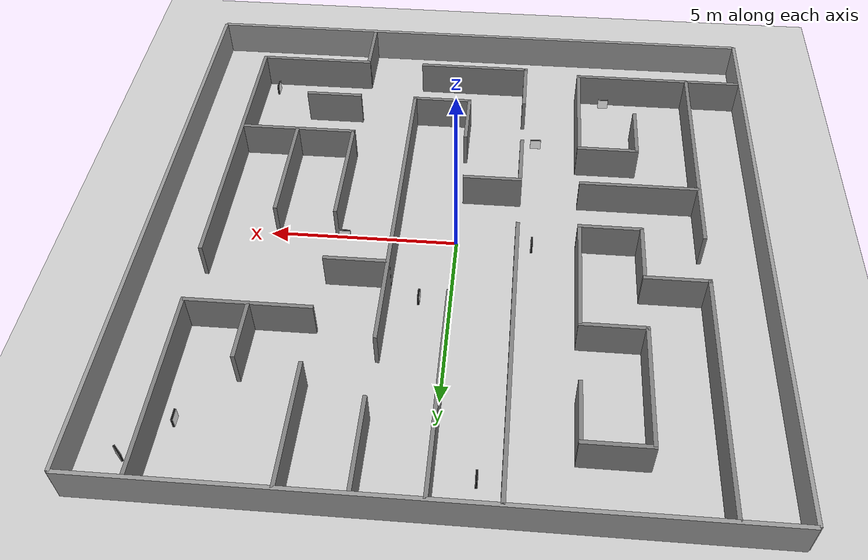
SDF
<?xml version="1.0" ?>
<sdf version="1.8">
  <world name="maze_world">
    <!-- Plugin fondamentali per Gazebo Harmonic -->
    <plugin filename="gz-sim-physics-system" name="gz::sim::systems::Physics"></plugin>
    <plugin filename="gz-sim-user-commands-system" name="gz::sim::systems::UserCommands"></plugin>
    <plugin filename="gz-sim-scene-broadcaster-system" name="gz::sim::systems::SceneBroadcaster"></plugin>
    <plugin filename="gz-sim-sensors-system" name="gz::sim::systems::Sensors">
      <render_engine>ogre2</render_engine>
    </plugin>

    <!-- Luce solare -->
    <light type="directional" name="sun">
      <cast_shadows>true</cast_shadows>
      <pose>0 0 10 0 0 0</pose>
      <diffuse>0.8 0.8 0.8 1</diffuse>
      <specular>0.2 0.2 0.2 1</specular>
      <direction>-0.5 0.1 -0.9</direction>
    </light>

    <!-- Pavimento -->
    <model name="ground_plane">
      <static>true</static>
      <link name="link">
        <collision name="collision">
          <geometry><plane><normal>0 0 1</normal><size>100 100</size></plane></geometry>
        </collision>
        <visual name="visual">
          <geometry><plane><normal>0 0 1</normal><size>100 100</size></plane></geometry>
          <material><ambient>0.8 0.8 0.8 1</ambient><diffuse>0.8 0.8 0.8 1</diffuse></material>
        </visual>
      </link>
    </model>

    <!-- Mura perimetrali -->
     <!-- Mura perimetrali -->
    <model name="boundary_north">
      <static>true</static><pose>8 0 0.5 0 0 0</pose>
      <link name="link">
        <collision name="collision"><geometry><box><size>0.1 16 1</size></box></geometry></collision>
        <visual name="visual">
          <geometry><box><size>0.1 16 1</size></box></geometry>
          <material>
            <ambient>0.6 0.6 0.6 1.0</ambient>
            <diffuse>0.6 0.6 0.6 1.0</diffuse>
            <emissive>0.6 0.6 0.6 1.0</emissive>
          </material>
        </visual>
      </link>
    </model>

    <model name="boundary_south">
      <static>true</static><pose>-8 0 0.5 0 0 0</pose>
      <link name="link">
        <collision name="collision"><geometry><box><size>0.1 16 1</size></box></geometry></collision>
        <visual name="visual">
          <geometry><box><size>0.1 16 1</size></box></geometry>
          <material>
            <ambient>0.6 0.6 0.6 1.0</ambient>
            <diffuse>0.6 0.6 0.6 1.0</diffuse>
            <emissive>0.6 0.6 0.6 1.0</emissive>
          </material>
        </visual>
      </link>
    </model>

    <model name="boundary_east">
      <static>true</static><pose>0 8 0.5 0 0 0</pose>
      <link name="link">
        <collision name="collision"><geometry><box><size>16 0.1 1</size></box></geometry></collision>
        <visual name="visual">
          <geometry><box><size>16 0.1 1</size></box></geometry>
          <material>
            <ambient>0.6 0.6 0.6 1.0</ambient>
            <diffuse>0.6 0.6 0.6 1.0</diffuse>
            <emissive>0.6 0.6 0.6 1.0</emissive>
          </material>
        </visual>
      </link>
    </model>

    <model name="boundary_west">
      <static>true</static><pose>0 -8 0.5 0 0 0</pose>
      <link name="link">
        <collision name="collision"><geometry><box><size>16 0.1 1</size></box></geometry></collision>
        <visual name="visual">
          <geometry><box><size>16 0.1 1</size></box></geometry>
          <material>
            <ambient>0.6 0.6 0.6 1.0</ambient>
            <diffuse>0.6 0.6 0.6 1.0</diffuse>
            <emissive>0.6 0.6 0.6 1.0</emissive>
          </material>
        </visual>
      </link>
    </model>

    <model name="muro_interno_1">

      <static>true</static><pose>-6.4 4.8 0.5 0 0 0</pose>

      <link name="link"><collision name="collision"><geometry><box><size>0.1 6.4 1</size></box></geometry></collision><visual name="visual"><geometry><box><size>0.1 6.4 1</size></box></geometry><material><ambient>0.5 0.5 0.5 1</ambient><diffuse>0.5 0.5 0.5 1</diffuse></material></visual></link>

    </model>

    <model name="muro_interno_2">

      <static>true</static><pose>-6.4 -3 0.5 0 0 0</pose>

      <link name="link"><collision name="collision"><geometry><box><size>0.1 6.4 1</size></box></geometry></collision><visual name="visual"><geometry><box><size>0.1 6.4 1</size></box></geometry><material><ambient>0.5 0.5 0.5 1</ambient><diffuse>0.5 0.5 0.5 1</diffuse></material></visual></link>

    </model>

    <model name="muro_interno_3">

      <static>true</static><pose>-4.8 4.8 0.5 0 0 0</pose>

      <link name="link"><collision name="collision"><geometry><box><size>0.1 3.2 1</size></box></geometry></collision><visual name="visual"><geometry><box><size>0.1 3.2 1</size></box></geometry><material><ambient>0.5 0.5 0.5 1</ambient><diffuse>0.5 0.5 0.5 1</diffuse></material></visual></link>

    </model>

    <model name="muro_interno_4">

      <static>true</static><pose>-4.8 0.8 0.5 0 0 0</pose>

      <link name="link"><collision name="collision"><geometry><box><size>0.1 1.6 1</size></box></geometry></collision><visual name="visual"><geometry><box><size>0.1 1.6 1</size></box></geometry><material><ambient>0.5 0.5 0.5 1</ambient><diffuse>0.5 0.5 0.5 1</diffuse></material></visual></link>

    </model>

    <model name="muro_interno_5">

      <static>true</static><pose>-5.6 1.62 0.5 0 0 0</pose>

      <link name="link"><collision name="collision"><geometry><box><size>1.7 0.1 1</size></box></geometry></collision><visual name="visual"><geometry><box><size>1.7 0.1 1</size></box></geometry><material><ambient>0.5 0.5 0.5 1</ambient><diffuse>0.5 0.5 0.5 1</diffuse></material></visual></link>

    </model>

    <model name="muro_interno_6">

      <static>true</static><pose>-5.6 -6.2 0.5 0 0 0</pose>

      <link name="link"><collision name="collision"><geometry><box><size>4.8 0.1 1</size></box></geometry></collision><visual name="visual"><geometry><box><size>4.8 0.1 1</size></box></geometry><material><ambient>0.5 0.5 0.5 1</ambient><diffuse>0.5 0.5 0.5 1</diffuse></material></visual></link>

    </model>

    <model name="muro_interno_7">

      <static>true</static><pose>-4.8 -1.6 0.5 0 0 0</pose>

      <link name="link"><collision name="collision"><geometry><box><size>3.2 0.1 1</size></box></geometry></collision><visual name="visual"><geometry><box><size>3.2 0.1 1</size></box></geometry><material><ambient>0.5 0.5 0.5 1</ambient><diffuse>0.5 0.5 0.5 1</diffuse></material></visual></link>

    </model>

    <model name="muro_interno_8">

      <static>true</static><pose>-3.2 -4.65 0.5 0 0 0</pose>

      <link name="link"><collision name="collision"><geometry><box><size>0.1 3.2 1</size></box></geometry></collision><visual name="visual"><geometry><box><size>0.1 3.2 1</size></box></geometry><material><ambient>0.5 0.5 0.5 1</ambient><diffuse>0.5 0.5 0.5 1</diffuse></material></visual></link>

    </model>

    <model name="muro_interno_9">

      <static>true</static><pose>-4 3.2 0.5 0 0 0</pose>

      <link name="link"><collision name="collision"><geometry><box><size>1.7 0.1 1</size></box></geometry></collision><visual name="visual"><geometry><box><size>1.7 0.1 1</size></box></geometry><material><ambient>0.5 0.5 0.5 1</ambient><diffuse>0.5 0.5 0.5 1</diffuse></material></visual></link>

    </model>

    <model name="muro_interno_10">

      <static>true</static><pose>-4 -3 0.5 0 0 0</pose>

      <link name="link"><collision name="collision"><geometry><box><size>1.7 0.1 1</size></box></geometry></collision><visual name="visual"><geometry><box><size>1.7 0.1 1</size></box></geometry><material><ambient>0.5 0.5 0.5 1</ambient><diffuse>0.5 0.5 0.5 1</diffuse></material></visual></link>

    </model>

    <model name="muro_interno_11">

      <static>true</static><pose>-4.8 -3.8 0.5 0 0 0</pose>

      <link name="link"><collision name="collision"><geometry><box><size>0.1 1.6 1</size></box></geometry></collision><visual name="visual"><geometry><box><size>0.1 1.6 1</size></box></geometry><material><ambient>0.5 0.5 0.5 1</ambient><diffuse>0.5 0.5 0.5 1</diffuse></material></visual></link>

    </model>

    <model name="muro_interno_12">

      <static>true</static><pose>-4 0 0.5 0 0 0</pose>

      <link name="link"><collision name="collision"><geometry><box><size>1.7 0.1 1</size></box></geometry></collision><visual name="visual"><geometry><box><size>1.7 0.1 1</size></box></geometry><material><ambient>0.5 0.5 0.5 1</ambient><diffuse>0.5 0.5 0.5 1</diffuse></material></visual></link>

    </model>

    <model name="muro_interno_13">

      <static>true</static><pose>-4 6.4 0.5 0 0 0</pose>

      <link name="link"><collision name="collision"><geometry><box><size>1.7 0.1 1</size></box></geometry></collision><visual name="visual"><geometry><box><size>1.7 0.1 1</size></box></geometry><material><ambient>0.5 0.5 0.5 1</ambient><diffuse>0.5 0.5 0.5 1</diffuse></material></visual></link>

    </model>

    <model name="muro_interno_14">

      <static>true</static><pose>-3.2 1.6 0.5 0 0 0</pose>

      <link name="link"><collision name="collision"><geometry><box><size>0.1 3.2 1</size></box></geometry></collision><visual name="visual"><geometry><box><size>0.1 3.2 1</size></box></geometry><material><ambient>0.5 0.5 0.5 1</ambient><diffuse>0.5 0.5 0.5 1</diffuse></material></visual></link>

    </model>

    <model name="muro_interno_15">

      <static>true</static><pose>-3.2 5.6 0.5 0 0 0</pose>

      <link name="link"><collision name="collision"><geometry><box><size>0.1 1.6 1</size></box></geometry></collision><visual name="visual"><geometry><box><size>0.1 1.6 1</size></box></geometry><material><ambient>0.5 0.5 0.5 1</ambient><diffuse>0.5 0.5 0.5 1</diffuse></material></visual></link>

    </model>

    <model name="muro_interno_16">

      <static>true</static><pose>-1.6 4 0.5 0 0 0</pose>

      <link name="link"><collision name="collision"><geometry><box><size>0.1 8 1</size></box></geometry></collision><visual name="visual"><geometry><box><size>0.1 8 1</size></box></geometry><material><ambient>0.5 0.5 0.5 1</ambient><diffuse>0.5 0.5 0.5 1</diffuse></material></visual></link>

    </model>

    <model name="muro_interno_17">

      <static>true</static><pose>-1.6 -2.4 0.5 0 0 0</pose>

      <link name="link"><collision name="collision"><geometry><box><size>0.1 1.6 1</size></box></geometry></collision><visual name="visual"><geometry><box><size>0.1 1.6 1</size></box></geometry><material><ambient>0.5 0.5 0.5 1</ambient><diffuse>0.5 0.5 0.5 1</diffuse></material></visual></link>

    </model>

    <model name="muro_interno_18">

      <static>true</static><pose>-1.6 -5.6 0.5 0 0 0</pose>

      <link name="link"><collision name="collision"><geometry><box><size>0.1 1.6 1</size></box></geometry></collision><visual name="visual"><geometry><box><size>0.1 1.6 1</size></box></geometry><material><ambient>0.5 0.5 0.5 1</ambient><diffuse>0.5 0.5 0.5 1</diffuse></material></visual></link>

    </model>

    <model name="muro_interno_19">

      <static>true</static><pose>-0.85 -1.6 0.5 0 0 0</pose>

      <link name="link"><collision name="collision"><geometry><box><size>1.6 0.1 1</size></box></geometry></collision><visual name="visual"><geometry><box><size>1.6 0.1 1</size></box></geometry><material><ambient>0.5 0.5 0.5 1</ambient><diffuse>0.5 0.5 0.5 1</diffuse></material></visual></link>

    </model>

    <model name="muro_interno_20">

      <static>true</static><pose>-0.05 -6.4 0.5 0 0 0</pose>

      <link name="link"><collision name="collision"><geometry><box><size>3.2 0.1 1</size></box></geometry></collision><visual name="visual"><geometry><box><size>3.2 0.1 1</size></box></geometry><material><ambient>0.5 0.5 0.5 1</ambient><diffuse>0.5 0.5 0.5 1</diffuse></material></visual></link>

    </model>

    <model name="muro_interno_21">

      <static>true</static><pose>0 5.2 0.5 0 0 0</pose>

      <link name="link"><collision name="collision"><geometry><box><size>0.1 5.6 1</size></box></geometry></collision><visual name="visual"><geometry><box><size>0.1 5.6 1</size></box></geometry><material><ambient>0.5 0.5 0.5 1</ambient><diffuse>0.5 0.5 0.5 1</diffuse></material></visual></link>

    </model>

    <model name="muro_interno_22">

      <static>true</static><pose>0 -4 0.5 0 0 0</pose>

      <link name="link"><collision name="collision"><geometry><box><size>0.1 1.6 1</size></box></geometry></collision><visual name="visual"><geometry><box><size>0.1 1.6 1</size></box></geometry><material><ambient>0.5 0.5 0.5 1</ambient><diffuse>0.5 0.5 0.5 1</diffuse></material></visual></link>

    </model>

    <model name="muro_interno_23">

      <static>true</static><pose>0.8 -4.8 0.5 0 0 0</pose>

      <link name="link"><collision name="collision"><geometry><box><size>1.7 0.1 1</size></box></geometry></collision><visual name="visual"><geometry><box><size>1.7 0.1 1</size></box></geometry><material><ambient>0.5 0.5 0.5 1</ambient><diffuse>0.5 0.5 0.5 1</diffuse></material></visual></link>

    </model>

    <model name="muro_interno_24">

      <static>true</static><pose>1.6 6.8 0.5 0 0 0</pose>

      <link name="link"><collision name="collision"><geometry><box><size>0.1 2.4 1</size></box></geometry></collision><visual name="visual"><geometry><box><size>0.1 2.4 1</size></box></geometry><material><ambient>0.5 0.5 0.5 1</ambient><diffuse>0.5 0.5 0.5 1</diffuse></material></visual></link>

    </model>

    <model name="muro_interno_25">

      <static>true</static><pose>1.6 -0.4 0.5 0 0 0</pose>

      <link name="link"><collision name="collision"><geometry><box><size>0.1 8.8 1</size></box></geometry></collision><visual name="visual"><geometry><box><size>0.1 8.8 1</size></box></geometry><material><ambient>0.5 0.5 0.5 1</ambient><diffuse>0.5 0.5 0.5 1</diffuse></material></visual></link>

    </model>

    <model name="muro_interno_26">

      <static>true</static><pose>2.4 1.6 0.5 0 0 0</pose>

      <link name="link"><collision name="collision"><geometry><box><size>1.7 0.1 1</size></box></geometry></collision><visual name="visual"><geometry><box><size>1.7 0.1 1</size></box></geometry><material><ambient>0.5 0.5 0.5 1</ambient><diffuse>0.5 0.5 0.5 1</diffuse></material></visual></link>

    </model>

    <model name="muro_interno_27">

      <static>true</static><pose>3.2 6.4 0.5 0 0 0</pose>

      <link name="link"><collision name="collision"><geometry><box><size>0.1 3.2 1</size></box></geometry></collision><visual name="visual"><geometry><box><size>0.1 3.2 1</size></box></geometry><material><ambient>0.5 0.5 0.5 1</ambient><diffuse>0.5 0.5 0.5 1</diffuse></material></visual></link>

    </model>

    <model name="muro_interno_28">

      <static>true</static><pose>3.2 -1.6 0.5 0 0 0</pose>

      <link name="link"><collision name="collision"><geometry><box><size>0.1 3.2 1</size></box></geometry></collision><visual name="visual"><geometry><box><size>0.1 3.2 1</size></box></geometry><material><ambient>0.5 0.5 0.5 1</ambient><diffuse>0.5 0.5 0.5 1</diffuse></material></visual></link>

    </model>

    <model name="muro_interno_29">

      <static>true</static><pose>3.2 -7.2 0.5 0 0 0</pose>

      <link name="link"><collision name="collision"><geometry><box><size>0.1 1.6 1</size></box></geometry></collision><visual name="visual"><geometry><box><size>0.1 1.6 1</size></box></geometry><material><ambient>0.5 0.5 0.5 1</ambient><diffuse>0.5 0.5 0.5 1</diffuse></material></visual></link>

    </model>

    <model name="muro_interno_30">

      <static>true</static><pose>4.8 3.2 0.5 0 0 0</pose>

      <link name="link"><collision name="collision"><geometry><box><size>3.2 0.1 1</size></box></geometry></collision><visual name="visual"><geometry><box><size>3.2 0.1 1</size></box></geometry><material><ambient>0.5 0.5 0.5 1</ambient><diffuse>0.5 0.5 0.5 1</diffuse></material></visual></link>

    </model>

    <model name="muro_interno_31">

      <static>true</static><pose>4.75 -3.2 0.5 0 0 0</pose>

      <link name="link"><collision name="collision"><geometry><box><size>3.2 0.1 1</size></box></geometry></collision><visual name="visual"><geometry><box><size>3.2 0.1 1</size></box></geometry><material><ambient>0.5 0.5 0.5 1</ambient><diffuse>0.5 0.5 0.5 1</diffuse></material></visual></link>

    </model>

    <model name="muro_interno_32">

      <static>true</static><pose>4 -4.8 0.5 0 0 0</pose>

      <link name="link"><collision name="collision"><geometry><box><size>1.6 0.1 1</size></box></geometry></collision><visual name="visual"><geometry><box><size>1.6 0.1 1</size></box></geometry><material><ambient>0.5 0.5 0.5 1</ambient><diffuse>0.5 0.5 0.5 1</diffuse></material></visual></link>

    </model>

    <model name="muro_interno_33">

      <static>true</static><pose>4.75 -6.4 0.5 0 0 0</pose>

      <link name="link"><collision name="collision"><geometry><box><size>3.2 0.1 1</size></box></geometry></collision><visual name="visual"><geometry><box><size>3.2 0.1 1</size></box></geometry><material><ambient>0.5 0.5 0.5 1</ambient><diffuse>0.5 0.5 0.5 1</diffuse></material></visual></link>

    </model>

    <model name="muro_interno_34">

      <static>true</static><pose>4.8 4 0.5 0 0 0</pose>

      <link name="link"><collision name="collision"><geometry><box><size>0.1 1.6 1</size></box></geometry></collision><visual name="visual"><geometry><box><size>0.1 1.6 1</size></box></geometry><material><ambient>0.5 0.5 0.5 1</ambient><diffuse>0.5 0.5 0.5 1</diffuse></material></visual></link>

    </model>

    <model name="muro_interno_36">

      <static>true</static><pose>4.8 -1.6 0.5 0 0 0</pose>

      <link name="link"><collision name="collision"><geometry><box><size>0.1 3.2 1</size></box></geometry></collision><visual name="visual"><geometry><box><size>0.1 3.2 1</size></box></geometry><material><ambient>0.5 0.5 0.5 1</ambient><diffuse>0.5 0.5 0.5 1</diffuse></material></visual></link>

    </model>

    <model name="muro_interno_37">

      <static>true</static><pose>6.4 5.55 0.5 0 0 0</pose>

      <link name="link"><collision name="collision"><geometry><box><size>0.1 4.8 1</size></box></geometry></collision><visual name="visual"><geometry><box><size>0.1 4.8 1</size></box></geometry><material><ambient>0.5 0.5 0.5 1</ambient><diffuse>0.5 0.5 0.5 1</diffuse></material></visual></link>

    </model>

    <model name="muro_interno_38">

      <static>true</static><pose>6.4 -2.45 0.5 0 0 0</pose>

      <link name="link"><collision name="collision"><geometry><box><size>0.1 8 1</size></box></geometry></collision><visual name="visual"><geometry><box><size>0.1 8 1</size></box></geometry><material><ambient>0.5 0.5 0.5 1</ambient><diffuse>0.5 0.5 0.5 1</diffuse></material></visual></link>

    </model>

       <!-- Chiave 1 (ArUco ID 1) - Marker solo su 2 facce -->
    <model name="key_1">
      <static>true</static>
      <pose>-2.0 -4.0 0.15 0 0 1.57</pose>
      <link name="link">

        <!-- Collisione fisica del cubo per Nav2 -->
        <collision name="collision">
          <geometry><box><size>0.05 0.3 0.3</size></box></geometry>
        </collision>

        <!-- 1. IL CUBO BASE (Completamente Nero) -->
        <visual name="cubo_base">
          <geometry><box><size>0.05 0.3 0.3</size></box></geometry>
          <material>
            <ambient>0.05 0.05 0.05 1.0</ambient>
            <diffuse>0.05 0.05 0.05 1.0</diffuse>
          </material>
        </visual>

        <!-- 2. FACCIA FRONTALE (con Marker) -->
        <visual name="marker_frontale1">
          <pose>0.026 0 0 0 0 0</pose>
          <!-- Spessore di 1 millimetro, larga e alta 30 cm -->
          <geometry><box><size>0.001 0.3 0.3</size></box></geometry>
          <material>
            <ambient>1.0 1.0 1.0 1.0</ambient>
            <diffuse>1.0 1.0 1.0 1.0</diffuse>
            <emissive>1.0 1.0 1.0 1.0</emissive>
            <pbr>
              <metal>
                <albedo_map>package://turtlebot_maze/models/aruco_textures/marker_1.png</albedo_map>
                <emissive_map>package://turtlebot_maze/models/aruco_textures/marker_1.png</emissive_map>
              </metal>
            </pbr>
          </material>
        </visual>

        <!-- 3. FACCIA POSTERIORE (Con Marker ) -->
        <visual name="marker_posteriore1">
          <pose>-0.026 0 0 0 0 0</pose>
          <geometry><box><size>0.001 0.3 0.3</size></box></geometry>
          <material>
            <ambient>1.0 1.0 1.0 1.0</ambient>
            <diffuse>1.0 1.0 1.0 1.0</diffuse>
            <emissive>1.0 1.0 1.0 1.0</emissive>
            <pbr>
              <metal>
                <albedo_map>package://turtlebot_maze/models/aruco_textures/marker_1.png</albedo_map>
                <emissive_map>package://turtlebot_maze/models/aruco_textures/marker_1.png</emissive_map>
              </metal>
            </pbr>
          </material>
        </visual>
      </link>
    </model>

       <!-- Chiave 2 (ArUco ID 2) - Marker solo su 2 facce -->
    <model name="key_2">
      <static>true</static>
      <pose>0.8 2.0 0.15 0 0 0</pose>
      <link name="link">

        <!-- Collisione fisica del cubo per Nav2 -->
        <collision name="collision">
          <geometry><box><size>0.05 0.3 0.3</size></box></geometry>
        </collision>

        <!-- 1. IL CUBO BASE (completamente Nero) -->
        <visual name="cubo_base">
          <geometry><box><size>0.05 0.3 0.3</size></box></geometry>
          <material>
            <ambient>0.05 0.05 0.05 1.0</ambient>
            <diffuse>0.05 0.05 0.05 1.0</diffuse>
          </material>
        </visual>

        <!-- 2. FACCIA FRONTALE (Con Marker) -->
        <visual name="marker_frontale2">
          <pose>0.026 0 0 0 0 0</pose>
          <!-- Spessore di 1 millimetro, larga e alta 30 cm -->
          <geometry><box><size>0.001 0.3 0.3</size></box></geometry>
          <material>
            <ambient>1.0 1.0 1.0 1.0</ambient>
            <diffuse>1.0 1.0 1.0 1.0</diffuse>
            <emissive>1.0 1.0 1.0 1.0</emissive>
            <pbr>
              <metal>
                <albedo_map>package://turtlebot_maze/models/aruco_textures/marker_2.png</albedo_map>
                <emissive_map>package://turtlebot_maze/models/aruco_textures/marker_2.png</emissive_map>
              </metal>
            </pbr>
          </material>
        </visual>

        <!-- 3. FACCIA POSTERIORE (Con Marker) -->
        <visual name="marker_posteriore2">
          <pose>-0.026 0 0 0 0 0</pose>
          <geometry><box><size>0.001 0.3 0.3</size></box></geometry>
          <material>
            <ambient>1.0 1.0 1.0 1.0</ambient>
            <diffuse>1.0 1.0 1.0 1.0</diffuse>
            <emissive>1.0 1.0 1.0 1.0</emissive>
            <pbr>
              <metal>
                <albedo_map>package://turtlebot_maze/models/aruco_textures/marker_2.png</albedo_map>
                <emissive_map>package://turtlebot_maze/models/aruco_textures/marker_2.png</emissive_map>
              </metal>
            </pbr>
          </material>
        </visual>
      </link>
    </model>

       <!-- Chiave 3 (ArUco ID 3) - Marker solo su 2 facce -->
    <model name="key_3">
      <static>true</static>
      <pose>-2.0 0 0.15 0 0 0</pose>
      <link name="link">

        <!-- Collisione fisica del cubo per Nav2 -->
        <collision name="collision">
          <geometry><box><size>0.05 0.3 0.3</size></box></geometry>
        </collision>

        <!-- 1. IL CUBO BASE (completamente Nero) -->
        <visual name="cubo_base">
          <geometry><box><size>0.05 0.3 0.3</size></box></geometry>
          <material>
            <ambient>0.05 0.05 0.05 1.0</ambient>
            <diffuse>0.05 0.05 0.05 1.0</diffuse>
          </material>
        </visual>

        <!-- 2. FACCIA FRONTALE (Con Marker) -->
        <visual name="marker_frontale3">
          <pose>0.026 0 0 0 0 0</pose>
          <!-- Spessore di 1 millimetro, larga e alta 30 cm -->
          <geometry><box><size>0.001 0.3 0.3</size></box></geometry>
          <material>
            <ambient>1.0 1.0 1.0 1.0</ambient>
            <diffuse>1.0 1.0 1.0 1.0</diffuse>
            <emissive>1.0 1.0 1.0 1.0</emissive>
            <pbr>
              <metal>
                <albedo_map>package://turtlebot_maze/models/aruco_textures/marker_3.png</albedo_map>
                <emissive_map>package://turtlebot_maze/models/aruco_textures/marker_3.png</emissive_map>
              </metal>
            </pbr>
          </material>
        </visual>

        <!-- 3. FACCIA POSTERIORE (Con Marker ) -->
        <visual name="marker_posteriore3">
          <pose>-0.026 0 0 0 0 0</pose>
          <geometry><box><size>0.001 0.3 0.3</size></box></geometry>
          <material>
            <ambient>1.0 1.0 1.0 1.0</ambient>
            <diffuse>1.0 1.0 1.0 1.0</diffuse>
            <emissive>1.0 1.0 1.0 1.0</emissive>
            <pbr>
              <metal>
                <albedo_map>package://turtlebot_maze/models/aruco_textures/marker_3.png</albedo_map>
                <emissive_map>package://turtlebot_maze/models/aruco_textures/marker_3.png</emissive_map>
              </metal>
            </pbr>
          </material>
        </visual>
      </link>
    </model>

       <!-- Chiave 4 (ArUco ID 2) - Marker solo su 2 facce -->
    <model name="key_4">
      <static>true</static>
      <pose>-4.0 -6.0 0.15 0 0 1.57</pose>
      <link name="link">

        <!-- Collisione fisica del cubo per Nav2 -->
        <collision name="collision">
          <geometry><box><size>0.05 0.3 0.3</size></box></geometry>
        </collision>

        <!-- 1. IL CUBO BASE (completamente Nero) -->
        <visual name="cubo_base">
          <geometry><box><size>0.05 0.3 0.3</size></box></geometry>
          <material>
            <ambient>0.05 0.05 0.05 1.0</ambient>
            <diffuse>0.05 0.05 0.05 1.0</diffuse>
          </material>
        </visual>

        <!-- 2. FACCIA FRONTALE (Con Marker ) -->
        <visual name="marker_frontale4">
          <pose>0.026 0 0 0 0 0</pose>
          <!-- Spessore di 1 millimetro, larga e alta 30 cm -->
          <geometry><box><size>0.001 0.3 0.3</size></box></geometry>
          <material>
            <ambient>1.0 1.0 1.0 1.0</ambient>
            <diffuse>1.0 1.0 1.0 1.0</diffuse>
            <emissive>1.0 1.0 1.0 1.0</emissive>
            <pbr>
              <metal>
                <albedo_map>package://turtlebot_maze/models/aruco_textures/marker_4.png</albedo_map>
                <emissive_map>package://turtlebot_maze/models/aruco_textures/marker_4.png</emissive_map>
              </metal>
            </pbr>
          </material>
        </visual>

        <!-- 3. FACCIA POSTERIORE (Con Marker) -->
        <visual name="marker_posteriore4">
          <pose>-0.026 0 0 0 0 0</pose>
          <geometry><box><size>0.001 0.3 0.3</size></box></geometry>
          <material>
            <ambient>1.0 1.0 1.0 1.0</ambient>
            <diffuse>1.0 1.0 1.0 1.0</diffuse>
            <emissive>1.0 1.0 1.0 1.0</emissive>
            <pbr>
              <metal>
                <albedo_map>package://turtlebot_maze/models/aruco_textures/marker_4.png</albedo_map>
                <emissive_map>package://turtlebot_maze/models/aruco_textures/marker_4.png</emissive_map>
              </metal>
            </pbr>
          </material>
        </visual>
      </link>
    </model>

       <!-- Chiave 5 (ArUco ID 2) - Marker solo su 2 facce -->
    <model name="key_5">
      <static>true</static>
      <pose>6.0 -6.0 0.15 0 0 0</pose>
      <link name="link">

        <!-- Collisione fisica del cubo per Nav2 -->
        <collision name="collision">
          <geometry><box><size>0.05 0.3 0.3</size></box></geometry>
        </collision>

        <!-- 1. IL CUBO BASE (completamente Nero) -->
        <visual name="cubo_base">
          <geometry><box><size>0.05 0.3 0.3</size></box></geometry>
          <material>
            <ambient>0.05 0.05 0.05 1.0</ambient>
            <diffuse>0.05 0.05 0.05 1.0</diffuse>
          </material>
        </visual>

        <!-- 2. FACCIA FRONTALE (Con Marker) -->
        <visual name="marker_frontale5">
          <pose>0.026 0 0 0 0 0</pose>
          <!-- Spessore di 1 millimetro, larga e alta 30 cm -->
          <geometry><box><size>0.001 0.3 0.3</size></box></geometry>
          <material>
            <ambient>1.0 1.0 1.0 1.0</ambient>
            <diffuse>1.0 1.0 1.0 1.0</diffuse>
            <emissive>1.0 1.0 1.0 1.0</emissive>
            <pbr>
              <metal>
                <albedo_map>package://turtlebot_maze/models/aruco_textures/marker_5.png</albedo_map>
                <emissive_map>package://turtlebot_maze/models/aruco_textures/marker_5.png</emissive_map>
              </metal>
            </pbr>
          </material>
        </visual>

        <!-- 3. FACCIA POSTERIORE (Con Marker) -->
        <visual name="marker_posteriore5">
          <pose>-0.026 0 0 0 0 0</pose>
          <geometry><box><size>0.001 0.3 0.3</size></box></geometry>
          <material>
            <ambient>1.0 1.0 1.0 1.0</ambient>
            <diffuse>1.0 1.0 1.0 1.0</diffuse>
            <emissive>1.0 1.0 1.0 1.0</emissive>
            <pbr>
              <metal>
                <albedo_map>package://turtlebot_maze/models/aruco_textures/marker_5.png</albedo_map>
                <emissive_map>package://turtlebot_maze/models/aruco_textures/marker_5.png</emissive_map>
              </metal>
            </pbr>
          </material>
        </visual>
      </link>
    </model>

       <!-- Chiave 6 (ArUco ID 2) - Marker solo su 2 facce -->
    <model name="key_6">
      <static>true</static>
      <pose>6.0 6.0 0.15 0 0 0</pose>
      <link name="link">

        <!-- Collisione fisica del cubo per Nav2 -->
        <collision name="collision">
          <geometry><box><size>0.05 0.3 0.3</size></box></geometry>
        </collision>

        <!-- 1. IL CUBO BASE (completamente Nero) -->
        <visual name="cubo_base">
          <geometry><box><size>0.05 0.3 0.3</size></box></geometry>
          <material>
            <ambient>0.05 0.05 0.05 1.0</ambient>
            <diffuse>0.05 0.05 0.05 1.0</diffuse>
          </material>
        </visual>

        <!-- 2. FACCIA FRONTALE (Con Marker) -->
        <visual name="marker_frontale6">
          <pose>0.026 0 0 0 0 0</pose>
          <!-- Spessore di 1 millimetro, larga e alta 30 cm -->
          <geometry><box><size>0.001 0.3 0.3</size></box></geometry>
          <material>
            <ambient>1.0 1.0 1.0 1.0</ambient>
            <diffuse>1.0 1.0 1.0 1.0</diffuse>
            <emissive>1.0 1.0 1.0 1.0</emissive>
            <pbr>
              <metal>
                <albedo_map>package://turtlebot_maze/models/aruco_textures/marker_6.png</albedo_map>
                <emissive_map>package://turtlebot_maze/models/aruco_textures/marker_6.png</emissive_map>
              </metal>
            </pbr>
          </material>
        </visual>

        <!-- 3. FACCIA POSTERIORE (Con Marker) -->
        <visual name="marker_posteriore6">
          <pose>-0.026 0 0 0 0 0</pose>
          <geometry><box><size>0.001 0.3 0.3</size></box></geometry>
          <material>
            <ambient>1.0 1.0 1.0 1.0</ambient>
            <diffuse>1.0 1.0 1.0 1.0</diffuse>
            <emissive>1.0 1.0 1.0 1.0</emissive>
            <pbr>
              <metal>
                <albedo_map>package://turtlebot_maze/models/aruco_textures/marker_6.png</albedo_map>
                <emissive_map>package://turtlebot_maze/models/aruco_textures/marker_6.png</emissive_map>
              </metal>
            </pbr>
          </material>
        </visual>
      </link>
    </model>

       <!-- Chiave 7 (ArUco ID 2) - Marker solo su 2 facce -->
    <model name="key_7">
      <static>true</static>
      <pose>3.0 0 0.15 0 0 1.57</pose>
      <link name="link">

        <!-- Collisione fisica del cubo per Nav2 -->
        <collision name="collision">
          <geometry><box><size>0.05 0.3 0.3</size></box></geometry>
        </collision>

        <!-- 1. IL CUBO BASE (completamente Nero) -->
        <visual name="cubo_base">
          <geometry><box><size>0.05 0.3 0.3</size></box></geometry>
          <material>
            <ambient>0.05 0.05 0.05 1.0</ambient>
            <diffuse>0.05 0.05 0.05 1.0</diffuse>
          </material>
        </visual>

        <!-- 2. FACCIA FRONTALE (Con Marker) -->
        <visual name="marker_frontale7">
          <pose>0.026 0 0 0 0 0</pose>
          <!-- Spessore di 1 millimetro, larga e alta 30 cm -->
          <geometry><box><size>0.001 0.3 0.3</size></box></geometry>
          <material>
            <ambient>1.0 1.0 1.0 1.0</ambient>
            <diffuse>1.0 1.0 1.0 1.0</diffuse>
            <emissive>1.0 1.0 1.0 1.0</emissive>
            <pbr>
              <metal>
                <albedo_map>package://turtlebot_maze/models/aruco_textures/marker_7.png</albedo_map>
                <emissive_map>package://turtlebot_maze/models/aruco_textures/marker_7.png</emissive_map>
              </metal>
            </pbr>
          </material>
        </visual>

        <!-- 3. FACCIA POSTERIORE (Con Marker ) -->
        <visual name="marker_posteriore7">
          <pose>-0.026 0 0 0 0 0</pose>
          <geometry><box><size>0.001 0.3 0.3</size></box></geometry>
          <material>
            <ambient>1.0 1.0 1.0 1.0</ambient>
            <diffuse>1.0 1.0 1.0 1.0</diffuse>
            <emissive>1.0 1.0 1.0 1.0</emissive>
            <pbr>
              <metal>
                <albedo_map>package://turtlebot_maze/models/aruco_textures/marker_7.png</albedo_map>
                <emissive_map>package://turtlebot_maze/models/aruco_textures/marker_7.png</emissive_map>
              </metal>
            </pbr>
          </material>
        </visual>
      </link>
    </model>

       <!-- Chiave 8 (ArUco ID 2) - Marker solo su 2 facce -->
    <model name="key_8">
      <static>true</static>
      <pose>-1.0 7.0 0.15 0 0 0</pose>
      <link name="link">

        <!-- Collisione fisica del cubo per Nav2 -->
        <collision name="collision">
          <geometry><box><size>0.05 0.3 0.3</size></box></geometry>
        </collision>

        <!-- 1. IL CUBO BASE (completamente Nero) -->
        <visual name="cubo_base">
          <geometry><box><size>0.05 0.3 0.3</size></box></geometry>
          <material>
            <ambient>0.05 0.05 0.05 1.0</ambient>
            <diffuse>0.05 0.05 0.05 1.0</diffuse>
          </material>
        </visual>

        <!-- 2. FACCIA FRONTALE (Con Marker) -->
        <visual name="marker_frontale8">
          <pose>0.026 0 0 0 0 0</pose>
          <!-- Spessore di 1 millimetro, larga e alta 30 cm -->
          <geometry><box><size>0.001 0.3 0.3</size></box></geometry>
          <material>
            <ambient>1.0 1.0 1.0 1.0</ambient>
            <diffuse>1.0 1.0 1.0 1.0</diffuse>
            <emissive>1.0 1.0 1.0 1.0</emissive>
            <pbr>
              <metal>
                <albedo_map>package://turtlebot_maze/models/aruco_textures/marker_8.png</albedo_map>
                <emissive_map>package://turtlebot_maze/models/aruco_textures/marker_8.png</emissive_map>
              </metal>
            </pbr>
          </material>
        </visual>

        <!-- 3. FACCIA POSTERIORE (Con Marker) -->
        <visual name="marker_posteriore8">
          <pose>-0.026 0 0 0 0 0</pose>
          <geometry><box><size>0.001 0.3 0.3</size></box></geometry>
          <material>
            <ambient>1.0 1.0 1.0 1.0</ambient>
            <diffuse>1.0 1.0 1.0 1.0</diffuse>
            <emissive>1.0 1.0 1.0 1.0</emissive>
            <pbr>
              <metal>
                <albedo_map>package://turtlebot_maze/models/aruco_textures/marker_8.png</albedo_map>
                <emissive_map>package://turtlebot_maze/models/aruco_textures/marker_8.png</emissive_map>
              </metal>
            </pbr>
          </material>
        </visual>
      </link>
    </model>

       <!-- Chiave 9 (ArUco ID 2) - Marker solo su 2 facce -->
    <model name="key_9">
      <static>true</static>
      <pose>7.0 7.0 0.15 0 0 0.78</pose>
      <link name="link">

        <!-- Collisione fisica del cubo per Nav2 -->
        <collision name="collision">
          <geometry><box><size>0.05 0.3 0.3</size></box></geometry>
        </collision>

        <!-- 1. IL CUBO BASE (completamente Nero) -->
        <visual name="cubo_base">
          <geometry><box><size>0.05 0.3 0.3</size></box></geometry>
          <material>
            <ambient>0.05 0.05 0.05 1.0</ambient>
            <diffuse>0.05 0.05 0.05 1.0</diffuse>
          </material>
        </visual>

        <!-- 2. FACCIA FRONTALE (Con Marker) -->
        <visual name="marker_frontale9">
          <pose>0.026 0 0 0 0 0</pose>
          <!-- Spessore invisibile di 1 millimetro, larga e alta 30 cm -->
          <geometry><box><size>0.001 0.3 0.3</size></box></geometry>
          <material>
            <ambient>1.0 1.0 1.0 1.0</ambient>
            <diffuse>1.0 1.0 1.0 1.0</diffuse>
            <emissive>1.0 1.0 1.0 1.0</emissive>
            <pbr>
              <metal>
                <albedo_map>package://turtlebot_maze/models/aruco_textures/marker_9.png</albedo_map>
                <emissive_map>package://turtlebot_maze/models/aruco_textures/marker_9.png</emissive_map>
              </metal>
            </pbr>
          </material>
        </visual>

        <!-- 3. FACCIA POSTERIORE (Con Marker ) -->
        <visual name="marker_posteriore9">
          <pose>-0.026 0 0 0 0 0</pose>
          <geometry><box><size>0.001 0.3 0.3</size></box></geometry>
          <material>
            <ambient>1.0 1.0 1.0 1.0</ambient>
            <diffuse>1.0 1.0 1.0 1.0</diffuse>
            <emissive>1.0 1.0 1.0 1.0</emissive>
            <pbr>
              <metal>
                <albedo_map>package://turtlebot_maze/models/aruco_textures/marker_9.png</albedo_map>
                <emissive_map>package://turtlebot_maze/models/aruco_textures/marker_9.png</emissive_map>
              </metal>
            </pbr>
          </material>
        </visual>
      </link>
    </model>

  </world>
</sdf>
